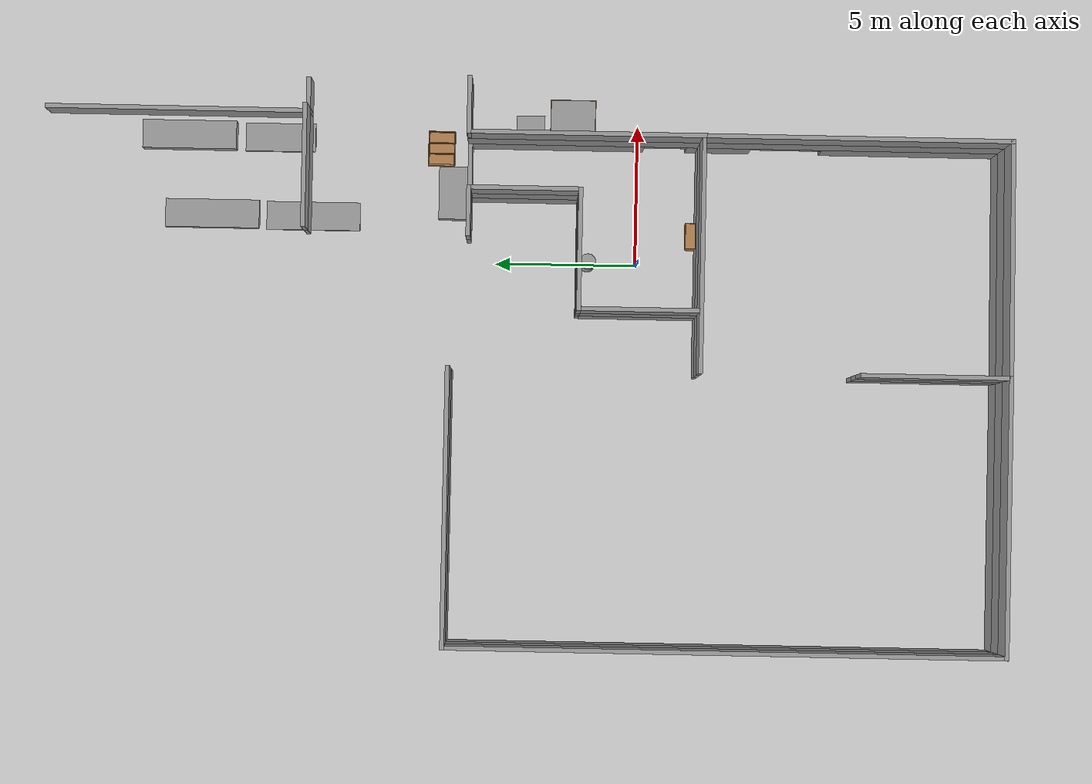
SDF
<sdf version="1.7">
 <world name="default">
  <model name="ground_plane">
   <pose>30 30 0 0 -0 0</pose>
   <static>1</static>
   <link name="link">
    <collision name="collision">
     <geometry><plane><normal>0 0 1</normal><size>100 100</size></plane></geometry>
     <surface><friction><ode><mu>100</mu><mu2>50</mu2></ode></friction></surface>
    </collision>
    <visual name="visual">
     <cast_shadows>0</cast_shadows>
     <geometry><plane><normal>0 0 1</normal><size>100 100</size></plane></geometry>
     <material>
      <script><uri>file://media/materials/scripts/gazebo.material</uri><name>Gazebo/Grey</name></script>
     </material>
    </visual>
   </link>
  </model>
  <model name="Soterrani_AT">
   <pose>30.7763 24.7178 0 0 0 -1.57187</pose>
   <link name="Wall_154">
    <collision name="Wall_154_Collision">
     <geometry><box><size>1.25 0.15 2.5</size></box></geometry>
     <pose>0 0 1.25 0 -0 0</pose>
    </collision>
    <visual name="Wall_154_Visual">
     <pose>0 0 1.25 0 -0 0</pose>
     <geometry><box><size>1.25 0.15 2.5</size></box></geometry>
     <material>
      <script><uri>file://media/materials/scripts/gazebo.material</uri><name>Gazebo/Grey</name></script>
      <ambient>1 1 1 1</ambient>
     </material>
     <meta><layer>1</layer></meta>
    </visual>
    <pose>13.1487 -25.1995 2.5 0 -0 -1.5708</pose>
   </link>
   <link name="Wall_155">
    <collision name="Wall_155_Collision">
     <geometry><box><size>9.25 0.15 2.5</size></box></geometry>
     <pose>0 0 1.25 0 -0 0</pose>
    </collision>
    <visual name="Wall_155_Visual">
     <pose>0 0 1.25 0 -0 0</pose>
     <geometry><box><size>9.25 0.15 2.5</size></box></geometry>
     <material>
      <script><uri>file://media/materials/scripts/gazebo.material</uri><name>Gazebo/Grey</name></script>
      <ambient>1 1 1 1</ambient>
     </material>
     <meta><layer>1</layer></meta>
    </visual>
    <pose>8.59874 -25.7495 2.5 0 -0 3.14159</pose>
   </link>
   <link name="Wall_175">
    <collision name="Wall_175_Collision">
     <geometry><box><size>8.25 0.15 2.5</size></box></geometry>
     <pose>0 0 1.25 0 -0 0</pose>
    </collision>
    <visual name="Wall_175_Visual">
     <pose>0 0 1.25 0 -0 0</pose>
     <geometry><box><size>8.25 0.15 2.5</size></box></geometry>
     <material>
      <script><uri>file://media/materials/scripts/gazebo.material</uri><name>Gazebo/Grey</name></script>
      <ambient>1 1 1 1</ambient>
     </material>
     <meta><layer>1</layer></meta>
    </visual>
    <pose>22.8435 -26.5468 2.5 0 -0 0</pose>
   </link>
   <link name="Wall_176">
    <collision name="Wall_176_Collision">
     <geometry><box><size>8.25 0.15 2.5</size></box></geometry>
     <pose>0 0 1.25 0 -0 0</pose>
    </collision>
    <visual name="Wall_176_Visual">
     <pose>0 0 1.25 0 -0 0</pose>
     <geometry><box><size>8.25 0.15 2.5</size></box></geometry>
     <material>
      <script><uri>file://media/materials/scripts/gazebo.material</uri><name>Gazebo/Grey</name></script>
      <ambient>1 1 1 1</ambient>
     </material>
     <meta><layer>1</layer></meta>
    </visual>
    <pose>26.8935 -30.5968 2.5 0 -0 -1.5708</pose>
   </link>
   <link name="Wall_177">
    <collision name="Wall_177_Collision">
     <geometry><box><size>4 0.15 2.5</size></box></geometry>
     <pose>0 0 1.25 0 -0 0</pose>
    </collision>
    <visual name="Wall_177_Visual">
     <pose>0 0 1.25 0 -0 0</pose>
     <geometry><box><size>4 0.15 2.5</size></box></geometry>
     <material>
      <script><uri>file://media/materials/scripts/gazebo.material</uri><name>Gazebo/Grey</name></script>
      <ambient>1 1 1 1</ambient>
     </material>
     <meta><layer>1</layer></meta>
    </visual>
    <pose>20.749 -28.4624 2.5 0 -0 0</pose>
   </link>
   <link name="Wall_178">
    <collision name="Wall_178_Collision">
     <geometry><box><size>4.25 0.15 2.5</size></box></geometry>
     <pose>0 0 1.25 0 -0 0</pose>
    </collision>
    <visual name="Wall_178_Visual">
     <pose>0 0 1.25 0 -0 0</pose>
     <geometry><box><size>4.25 0.15 2.5</size></box></geometry>
     <material>
      <script><uri>file://media/materials/scripts/gazebo.material</uri><name>Gazebo/Grey</name></script>
      <ambient>1 1 1 1</ambient>
     </material>
     <meta><layer>1</layer></meta>
    </visual>
    <pose>22.674 -30.5124 2.5 0 -0 -1.5708</pose>
   </link>
   <link name="Wall_179">
    <collision name="Wall_179_Collision">
     <geometry><box><size>4.25 0.15 2.5</size></box></geometry>
     <pose>0 0 1.25 0 -0 0</pose>
    </collision>
    <visual name="Wall_179_Visual">
     <pose>0 0 1.25 0 -0 0</pose>
     <geometry><box><size>4.25 0.15 2.5</size></box></geometry>
     <material>
      <script><uri>file://media/materials/scripts/gazebo.material</uri><name>Gazebo/Grey</name></script>
      <ambient>1 1 1 1</ambient>
     </material>
     <meta><layer>1</layer></meta>
    </visual>
    <pose>24.724 -32.5624 2.5 0 -0 0</pose>
   </link>
   <link name="Wall_184">
    <collision name="Wall_184_Collision">
     <geometry><box><size>9.75 0.15 2.5</size></box></geometry>
     <pose>0 0 1.25 0 -0 0</pose>
    </collision>
    <visual name="Wall_184_Visual">
     <pose>0 0 1.25 0 -0 0</pose>
     <geometry><box><size>9.75 0.15 2.5</size></box></geometry>
     <material>
      <script><uri>file://media/materials/scripts/gazebo.material</uri><name>Gazebo/Grey</name></script>
      <ambient>1 1 1 1</ambient>
     </material>
     <meta><layer>1</layer></meta>
    </visual>
    <pose>18.2089 -39.4717 2.5 0 -0 -1.5708</pose>
   </link>
   <link name="Wall_185">
    <collision name="Wall_185_Collision">
     <geometry><box><size>19.5 0.15 2.5</size></box></geometry>
     <pose>0 0 1.25 0 -0 0</pose>
    </collision>
    <visual name="Wall_185_Visual">
     <pose>0 0 1.25 0 -0 0</pose>
     <geometry><box><size>19.5 0.15 2.5</size></box></geometry>
     <material>
      <script><uri>file://media/materials/scripts/gazebo.material</uri><name>Gazebo/Grey</name></script>
      <ambient>1 1 1 1</ambient>
     </material>
     <meta><layer>1</layer></meta>
    </visual>
    <pose>27.8839 -44.2717 2.5 0 -0 0</pose>
   </link>
   <link name="Wall_186">
    <collision name="Wall_186_Collision">
     <geometry><box><size>9.75 0.15 2.5</size></box></geometry>
     <pose>0 0 1.25 0 -0 0</pose>
    </collision>
    <visual name="Wall_186_Visual">
     <pose>0 0 1.25 0 -0 0</pose>
     <geometry><box><size>9.75 0.15 2.5</size></box></geometry>
     <material>
      <script><uri>file://media/materials/scripts/gazebo.material</uri><name>Gazebo/Grey</name></script>
      <ambient>1 1 1 1</ambient>
     </material>
     <meta><layer>1</layer></meta>
    </visual>
    <pose>37.5589 -39.4717 2.5 0 -0 1.5708</pose>
   </link>
   <link name="Wall_187">
    <collision name="Wall_187_Collision">
     <geometry><box><size>5.25 0.15 2.5</size></box></geometry>
     <pose>0 0 1.25 0 -0 0</pose>
    </collision>
    <visual name="Wall_187_Visual">
     <pose>0 0 1.25 0 -0 0</pose>
     <geometry><box><size>5.25 0.15 2.5</size></box></geometry>
     <material>
      <script><uri>file://media/materials/scripts/gazebo.material</uri><name>Gazebo/Grey</name></script>
      <ambient>1 1 1 1</ambient>
     </material>
     <meta><layer>1</layer></meta>
    </visual>
    <pose>35.0089 -34.6717 2.5 0 -0 3.14159</pose>
   </link>
   <link name="Wall_188">
    <collision name="Wall_188_Collision">
     <geometry><box><size>10.75 0.15 2.5</size></box></geometry>
     <pose>0 0 1.25 0 -0 0</pose>
    </collision>
    <visual name="Wall_188_Visual">
     <pose>0 0 1.25 0 -0 0</pose>
     <geometry><box><size>10.75 0.15 2.5</size></box></geometry>
     <material>
      <script><uri>file://media/materials/scripts/gazebo.material</uri><name>Gazebo/Grey</name></script>
      <ambient>1 1 1 1</ambient>
     </material>
     <meta><layer>1</layer></meta>
    </visual>
    <pose>32.1935 -26.5468 2.5 0 -0 0</pose>
   </link>
   <link name="Wall_189">
    <collision name="Wall_189_Collision">
     <geometry><box><size>8.27518 0.15 2.5</size></box></geometry>
     <pose>0 0 1.25 0 -0 0</pose>
    </collision>
    <visual name="Wall_189_Visual">
     <pose>0 0 1.25 0 -0 0</pose>
     <geometry><box><size>8.27518 0.15 2.5</size></box></geometry>
     <material>
      <script><uri>file://media/materials/scripts/gazebo.material</uri><name>Gazebo/Grey</name></script>
      <ambient>1 1 1 1</ambient>
     </material>
     <meta><layer>1</layer></meta>
    </visual>
    <pose>37.5262 -30.6092 2.5 0 -0 -1.56274</pose>
   </link>
   <link name="Wall_206">
    <collision name="Wall_206_Collision">
     <geometry><box><size>4.25 0.15 2.5</size></box></geometry>
     <pose>0 0 1.25 0 -0 0</pose>
    </collision>
    <visual name="Wall_206_Visual">
     <pose>0 0 1.25 0 -0 0</pose>
     <geometry><box><size>4.25 0.15 2.5</size></box></geometry>
     <material>
      <script><uri>file://media/materials/scripts/gazebo.material</uri><name>Gazebo/Grey</name></script>
      <ambient>1 1 1 1</ambient>
     </material>
     <meta><layer>1</layer></meta>
    </visual>
    <pose>13.1487 -27.7995 2.5 0 -0 -1.5708</pose>
   </link>
   <link name="Wall_208">
    <collision name="Wall_208_Collision">
     <geometry><box><size>2 0.15 2.5</size></box></geometry>
     <pose>0 0 1.25 0 -0 0</pose>
    </collision>
    <visual name="Wall_208_Visual">
     <pose>0 0 1.25 0 -0 0</pose>
     <geometry><box><size>2 0.15 2.5</size></box></geometry>
     <material>
      <script><uri>file://media/materials/scripts/gazebo.material</uri><name>Gazebo/Grey</name></script>
      <ambient>1 1 1 1</ambient>
     </material>
     <meta><layer>1</layer></meta>
    </visual>
    <pose>18.7935 -25.6218 2.5 0 -0 1.5708</pose>
   </link>
   <link name="Wall_218">
    <collision name="Wall_218_Collision">
     <geometry><box><size>1.75 0.15 2.5</size></box></geometry>
     <pose>0 0 1.25 0 -0 0</pose>
    </collision>
    <visual name="Wall_218_Visual">
     <pose>0 0 1.25 0 -0 0</pose>
     <geometry><box><size>1.75 0.15 2.5</size></box></geometry>
     <material>
      <script><uri>file://media/materials/scripts/gazebo.material</uri><name>Gazebo/Grey</name></script>
      <ambient>1 1 1 1</ambient>
     </material>
     <meta><layer>1</layer></meta>
    </visual>
    <pose>18.824 -29.2624 2.5 0 -0 -1.5708</pose>
   </link>
   <link name="Wall_245">
    <collision name="Wall_245_Collision">
     <geometry><box><size>8.25 0.15 2.5</size></box></geometry>
     <pose>0 0 1.25 0 -0 0</pose>
    </collision>
    <visual name="Wall_245_Visual">
     <pose>0 0 1.25 0 -0 0</pose>
     <geometry><box><size>8.25 0.15 2.5</size></box></geometry>
     <material>
      <script><uri>file://media/materials/scripts/gazebo.material</uri><name>Gazebo/Grey</name></script>
      <ambient>1 1 1 1</ambient>
     </material>
     <meta><layer>2</layer></meta>
    </visual>
    <pose>22.8435 -26.5468 5 0 -0 0</pose>
   </link>
   <link name="Wall_246">
    <collision name="Wall_246_Collision">
     <geometry><box><size>8.25 0.15 2.5</size></box></geometry>
     <pose>0 0 1.25 0 -0 0</pose>
    </collision>
    <visual name="Wall_246_Visual">
     <pose>0 0 1.25 0 -0 0</pose>
     <geometry><box><size>8.25 0.15 2.5</size></box></geometry>
     <material>
      <script><uri>file://media/materials/scripts/gazebo.material</uri><name>Gazebo/Grey</name></script>
      <ambient>1 1 1 1</ambient>
     </material>
     <meta><layer>2</layer></meta>
    </visual>
    <pose>26.8935 -30.5968 5 0 -0 -1.5708</pose>
   </link>
   <link name="Wall_247">
    <collision name="Wall_247_Collision">
     <geometry><box><size>4 0.15 2.5</size></box></geometry>
     <pose>0 0 1.25 0 -0 0</pose>
    </collision>
    <visual name="Wall_247_Visual">
     <pose>0 0 1.25 0 -0 0</pose>
     <geometry><box><size>4 0.15 2.5</size></box></geometry>
     <material>
      <script><uri>file://media/materials/scripts/gazebo.material</uri><name>Gazebo/Grey</name></script>
      <ambient>1 1 1 1</ambient>
     </material>
     <meta><layer>2</layer></meta>
    </visual>
    <pose>20.749 -28.4624 5 0 -0 0</pose>
   </link>
   <link name="Wall_248">
    <collision name="Wall_248_Collision">
     <geometry><box><size>4.25 0.15 2.5</size></box></geometry>
     <pose>0 0 1.25 0 -0 0</pose>
    </collision>
    <visual name="Wall_248_Visual">
     <pose>0 0 1.25 0 -0 0</pose>
     <geometry><box><size>4.25 0.15 2.5</size></box></geometry>
     <material>
      <script><uri>file://media/materials/scripts/gazebo.material</uri><name>Gazebo/Grey</name></script>
      <ambient>1 1 1 1</ambient>
     </material>
     <meta><layer>2</layer></meta>
    </visual>
    <pose>22.674 -30.5124 5 0 -0 -1.5708</pose>
   </link>
   <link name="Wall_249">
    <collision name="Wall_249_Collision">
     <geometry><box><size>4.25 0.15 2.5</size></box></geometry>
     <pose>0 0 1.25 0 -0 0</pose>
    </collision>
    <visual name="Wall_249_Visual">
     <pose>0 0 1.25 0 -0 0</pose>
     <geometry><box><size>4.25 0.15 2.5</size></box></geometry>
     <material>
      <script><uri>file://media/materials/scripts/gazebo.material</uri><name>Gazebo/Grey</name></script>
      <ambient>1 1 1 1</ambient>
     </material>
     <meta><layer>2</layer></meta>
    </visual>
    <pose>24.724 -32.5624 5 0 -0 0</pose>
   </link>
   <link name="Wall_254">
    <collision name="Wall_254_Collision">
     <geometry><box><size>9.75 0.15 2.5</size></box></geometry>
     <pose>0 0 1.25 0 -0 0</pose>
    </collision>
    <visual name="Wall_254_Visual">
     <pose>0 0 1.25 0 -0 0</pose>
     <geometry><box><size>9.75 0.15 2.5</size></box></geometry>
     <material>
      <script><uri>file://media/materials/scripts/gazebo.material</uri><name>Gazebo/Grey</name></script>
      <ambient>1 1 1 1</ambient>
     </material>
     <meta><layer>2</layer></meta>
    </visual>
    <pose>18.2089 -39.4717 5 0 -0 -1.5708</pose>
   </link>
   <link name="Wall_255">
    <collision name="Wall_255_Collision">
     <geometry><box><size>19.5 0.15 2.5</size></box></geometry>
     <pose>0 0 1.25 0 -0 0</pose>
    </collision>
    <visual name="Wall_255_Visual">
     <pose>0 0 1.25 0 -0 0</pose>
     <geometry><box><size>19.5 0.15 2.5</size></box></geometry>
     <material>
      <script><uri>file://media/materials/scripts/gazebo.material</uri><name>Gazebo/Grey</name></script>
      <ambient>1 1 1 1</ambient>
     </material>
     <meta><layer>2</layer></meta>
    </visual>
    <pose>27.8839 -44.2717 5 0 -0 0</pose>
   </link>
   <link name="Wall_256">
    <collision name="Wall_256_Collision">
     <geometry><box><size>9.75 0.15 2.5</size></box></geometry>
     <pose>0 0 1.25 0 -0 0</pose>
    </collision>
    <visual name="Wall_256_Visual">
     <pose>0 0 1.25 0 -0 0</pose>
     <geometry><box><size>9.75 0.15 2.5</size></box></geometry>
     <material>
      <script><uri>file://media/materials/scripts/gazebo.material</uri><name>Gazebo/Grey</name></script>
      <ambient>1 1 1 1</ambient>
     </material>
     <meta><layer>2</layer></meta>
    </visual>
    <pose>37.5589 -39.4717 5 0 -0 1.5708</pose>
   </link>
   <link name="Wall_257">
    <collision name="Wall_257_Collision">
     <geometry><box><size>5.25 0.15 2.5</size></box></geometry>
     <pose>0 0 1.25 0 -0 0</pose>
    </collision>
    <visual name="Wall_257_Visual">
     <pose>0 0 1.25 0 -0 0</pose>
     <geometry><box><size>5.25 0.15 2.5</size></box></geometry>
     <material>
      <script><uri>file://media/materials/scripts/gazebo.material</uri><name>Gazebo/Grey</name></script>
      <ambient>1 1 1 1</ambient>
     </material>
     <meta><layer>2</layer></meta>
    </visual>
    <pose>35.0089 -34.6717 5 0 -0 3.14159</pose>
   </link>
   <link name="Wall_258">
    <collision name="Wall_258_Collision">
     <geometry><box><size>10.75 0.15 2.5</size></box></geometry>
     <pose>0 0 1.25 0 -0 0</pose>
    </collision>
    <visual name="Wall_258_Visual">
     <pose>0 0 1.25 0 -0 0</pose>
     <geometry><box><size>10.75 0.15 2.5</size></box></geometry>
     <material>
      <script><uri>file://media/materials/scripts/gazebo.material</uri><name>Gazebo/Grey</name></script>
      <ambient>1 1 1 1</ambient>
     </material>
     <meta><layer>2</layer></meta>
    </visual>
    <pose>32.1935 -26.5468 5 0 -0 0</pose>
   </link>
   <link name="Wall_259">
    <collision name="Wall_259_Collision">
     <geometry><box><size>8.27518 0.15 2.5</size></box></geometry>
     <pose>0 0 1.25 0 -0 0</pose>
    </collision>
    <visual name="Wall_259_Visual">
     <pose>0 0 1.25 0 -0 0</pose>
     <geometry><box><size>8.27518 0.15 2.5</size></box></geometry>
     <material>
      <script><uri>file://media/materials/scripts/gazebo.material</uri><name>Gazebo/Grey</name></script>
      <ambient>1 1 1 1</ambient>
     </material>
     <meta><layer>2</layer></meta>
    </visual>
    <pose>37.5262 -30.6092 5 0 -0 -1.56274</pose>
   </link>
   <link name="Wall_276">
    <collision name="Wall_276_Collision">
     <geometry><box><size>4.25 0.15 2.5</size></box></geometry>
     <pose>0 0 1.25 0 -0 0</pose>
    </collision>
    <visual name="Wall_276_Visual">
     <pose>0 0 1.25 0 -0 0</pose>
     <geometry><box><size>4.25 0.15 2.5</size></box></geometry>
     <material>
      <script><uri>file://media/materials/scripts/gazebo.material</uri><name>Gazebo/Grey</name></script>
      <ambient>1 1 1 1</ambient>
     </material>
     <meta><layer>2</layer></meta>
    </visual>
    <pose>13.1487 -27.7995 5 0 -0 -1.5708</pose>
   </link>
   <link name="Wall_277">
    <collision name="Wall_277_Collision">
     <geometry><box><size>2 0.15 2.5</size></box></geometry>
     <pose>0 0 1.25 0 -0 0</pose>
    </collision>
    <visual name="Wall_277_Visual">
     <pose>0 0 1.25 0 -0 0</pose>
     <geometry><box><size>2 0.15 2.5</size></box></geometry>
     <material>
      <script><uri>file://media/materials/scripts/gazebo.material</uri><name>Gazebo/Grey</name></script>
      <ambient>1 1 1 1</ambient>
     </material>
     <meta><layer>2</layer></meta>
    </visual>
    <pose>18.7935 -25.6218 5 0 -0 1.5708</pose>
   </link>
   <link name="Wall_279">
    <collision name="Wall_279_Collision">
     <geometry><box><size>1.75 0.15 2.5</size></box></geometry>
     <pose>0 0 1.25 0 -0 0</pose>
    </collision>
    <visual name="Wall_279_Visual">
     <pose>0 0 1.25 0 -0 0</pose>
     <geometry><box><size>1.75 0.15 2.5</size></box></geometry>
     <material>
      <script><uri>file://media/materials/scripts/gazebo.material</uri><name>Gazebo/Grey</name></script>
      <ambient>1 1 1 1</ambient>
     </material>
     <meta><layer>2</layer></meta>
    </visual>
    <pose>18.824 -29.2624 5 0 -0 -1.5708</pose>
   </link>
   <link name="Wall_36">
    <collision name="Wall_36_Collision">
     <geometry><box><size>3.5 0.15 2.5</size></box></geometry>
     <pose>0 0 1.25 0 -0 0</pose>
    </collision>
    <visual name="Wall_36_Visual">
     <pose>0 0 1.25 0 -0 0</pose>
     <geometry><box><size>3.5 0.15 2.5</size></box></geometry>
     <material>
      <script><uri>file://media/materials/scripts/gazebo.material</uri><name>Gazebo/Grey</name></script>
      <ambient>1 1 1 1</ambient>
     </material>
     <meta><layer>0</layer></meta>
    </visual>
    <pose>18.7935 -28.2218 0 0 -0 1.5708</pose>
   </link>
   <link name="Wall_41">
    <pose>22.8435 -26.5468 0 0 -0 0</pose>
    <visual name="Wall_41_Visual_0">
     <pose>-1.01658 0 1.25 0 -0 0</pose>
     <geometry><box><size>6.21685 0.15 2.5</size></box></geometry>
     <material>
      <script><uri>file://media/materials/scripts/gazebo.material</uri><name>Gazebo/Grey</name></script>
      <ambient>1 1 1 1</ambient>
     </material>
     <meta><layer>0</layer></meta>
    </visual>
    <collision name="Wall_41_Collision_0">
     <geometry><box><size>6.21685 0.15 2.5</size></box></geometry>
     <pose>-1.01658 0 1.25 0 -0 0</pose>
    </collision>
    <visual name="Wall_41_Visual_1">
     <pose>3.85842 0 1.25 0 -0 0</pose>
     <geometry><box><size>0.533155 0.15 2.5</size></box></geometry>
     <material>
      <script><uri>file://media/materials/scripts/gazebo.material</uri><name>Gazebo/Grey</name></script>
      <ambient>1 1 1 1</ambient>
     </material>
     <meta><layer>0</layer></meta>
    </visual>
    <collision name="Wall_41_Collision_1">
     <geometry><box><size>0.533155 0.15 2.5</size></box></geometry>
     <pose>3.85842 0 1.25 0 -0 0</pose>
    </collision>
    <visual name="Wall_41_Visual_2">
     <pose>2.84185 0 2.25 0 -0 0</pose>
     <geometry><box><size>1.5 0.15 0.5</size></box></geometry>
     <material>
      <script><uri>file://media/materials/scripts/gazebo.material</uri><name>Gazebo/Grey</name></script>
      <ambient>1 1 1 1</ambient>
     </material>
     <meta><layer>0</layer></meta>
    </visual>
    <collision name="Wall_41_Collision_2">
     <geometry><box><size>1.5 0.15 0.5</size></box></geometry>
     <pose>2.84185 0 2.25 0 -0 0</pose>
    </collision>
   </link>
   <link name="Wall_43">
    <collision name="Wall_43_Collision">
     <geometry><box><size>8.25 0.15 2.5</size></box></geometry>
     <pose>0 0 1.25 0 -0 0</pose>
    </collision>
    <visual name="Wall_43_Visual">
     <pose>0 0 1.25 0 -0 0</pose>
     <geometry><box><size>8.25 0.15 2.5</size></box></geometry>
     <material>
      <script><uri>file://media/materials/scripts/gazebo.material</uri><name>Gazebo/Grey</name></script>
      <ambient>1 1 1 1</ambient>
     </material>
     <meta><layer>0</layer></meta>
    </visual>
    <pose>26.8935 -30.5968 0 0 -0 -1.5708</pose>
   </link>
   <link name="Wall_45">
    <collision name="Wall_45_Collision">
     <geometry><box><size>4 0.15 2.5</size></box></geometry>
     <pose>0 0 1.25 0 -0 0</pose>
    </collision>
    <visual name="Wall_45_Visual">
     <pose>0 0 1.25 0 -0 0</pose>
     <geometry><box><size>4 0.15 2.5</size></box></geometry>
     <material>
      <script><uri>file://media/materials/scripts/gazebo.material</uri><name>Gazebo/Grey</name></script>
      <ambient>1 1 1 1</ambient>
     </material>
     <meta><layer>0</layer></meta>
    </visual>
    <pose>20.749 -28.4624 0 0 -0 0</pose>
   </link>
   <link name="Wall_46">
    <collision name="Wall_46_Collision">
     <geometry><box><size>4.25 0.15 2.5</size></box></geometry>
     <pose>0 0 1.25 0 -0 0</pose>
    </collision>
    <visual name="Wall_46_Visual">
     <pose>0 0 1.25 0 -0 0</pose>
     <geometry><box><size>4.25 0.15 2.5</size></box></geometry>
     <material>
      <script><uri>file://media/materials/scripts/gazebo.material</uri><name>Gazebo/Grey</name></script>
      <ambient>1 1 1 1</ambient>
     </material>
     <meta><layer>0</layer></meta>
    </visual>
    <pose>22.674 -30.5124 0 0 -0 -1.5708</pose>
   </link>
   <link name="Wall_47">
    <collision name="Wall_47_Collision">
     <geometry><box><size>4.25 0.15 2.5</size></box></geometry>
     <pose>0 0 1.25 0 -0 0</pose>
    </collision>
    <visual name="Wall_47_Visual">
     <pose>0 0 1.25 0 -0 0</pose>
     <geometry><box><size>4.25 0.15 2.5</size></box></geometry>
     <material>
      <script><uri>file://media/materials/scripts/gazebo.material</uri><name>Gazebo/Grey</name></script>
      <ambient>1 1 1 1</ambient>
     </material>
     <meta><layer>0</layer></meta>
    </visual>
    <pose>24.724 -32.5624 0 0 -0 0</pose>
   </link>
   <link name="Wall_58">
    <collision name="Wall_58_Collision">
     <geometry><box><size>9.75 0.15 2.5</size></box></geometry>
     <pose>0 0 1.25 0 -0 0</pose>
    </collision>
    <visual name="Wall_58_Visual">
     <pose>0 0 1.25 0 -0 0</pose>
     <geometry><box><size>9.75 0.15 2.5</size></box></geometry>
     <material>
      <script><uri>file://media/materials/scripts/gazebo.material</uri><name>Gazebo/Grey</name></script>
      <ambient>1 1 1 1</ambient>
     </material>
     <meta><layer>0</layer></meta>
    </visual>
    <pose>18.2089 -39.4717 0 0 -0 -1.5708</pose>
   </link>
   <link name="Wall_59">
    <collision name="Wall_59_Collision">
     <geometry><box><size>19.5 0.15 2.5</size></box></geometry>
     <pose>0 0 1.25 0 -0 0</pose>
    </collision>
    <visual name="Wall_59_Visual">
     <pose>0 0 1.25 0 -0 0</pose>
     <geometry><box><size>19.5 0.15 2.5</size></box></geometry>
     <material>
      <script><uri>file://media/materials/scripts/gazebo.material</uri><name>Gazebo/Grey</name></script>
      <ambient>1 1 1 1</ambient>
     </material>
     <meta><layer>0</layer></meta>
    </visual>
    <pose>27.8839 -44.2717 0 0 -0 0</pose>
   </link>
   <link name="Wall_60">
    <collision name="Wall_60_Collision">
     <geometry><box><size>9.75 0.15 2.5</size></box></geometry>
     <pose>0 0 1.25 0 -0 0</pose>
    </collision>
    <visual name="Wall_60_Visual">
     <pose>0 0 1.25 0 -0 0</pose>
     <geometry><box><size>9.75 0.15 2.5</size></box></geometry>
     <material>
      <script><uri>file://media/materials/scripts/gazebo.material</uri><name>Gazebo/Grey</name></script>
      <ambient>1 1 1 1</ambient>
     </material>
     <meta><layer>0</layer></meta>
    </visual>
    <pose>37.5589 -39.4717 0 0 -0 1.5708</pose>
   </link>
   <link name="Wall_61">
    <collision name="Wall_61_Collision">
     <geometry><box><size>5.25 0.15 2.5</size></box></geometry>
     <pose>0 0 1.25 0 -0 0</pose>
    </collision>
    <visual name="Wall_61_Visual">
     <pose>0 0 1.25 0 -0 0</pose>
     <geometry><box><size>5.25 0.15 2.5</size></box></geometry>
     <material>
      <script><uri>file://media/materials/scripts/gazebo.material</uri><name>Gazebo/Grey</name></script>
      <ambient>1 1 1 1</ambient>
     </material>
     <meta><layer>0</layer></meta>
    </visual>
    <pose>35.0089 -34.6717 0 0 -0 3.14159</pose>
   </link>
   <link name="Wall_63">
    <pose>32.1935 -26.5468 0 0 -0 0</pose>
    <visual name="Wall_63_Visual_0">
     <pose>-4.43025 0 1.25 0 -0 0</pose>
     <geometry><box><size>1.8895 0.15 2.5</size></box></geometry>
     <material>
      <script><uri>file://media/materials/scripts/gazebo.material</uri><name>Gazebo/Grey</name></script>
      <ambient>1 1 1 1</ambient>
     </material>
     <meta><layer>0</layer></meta>
    </visual>
    <collision name="Wall_63_Collision_0">
     <geometry><box><size>1.8895 0.15 2.5</size></box></geometry>
     <pose>-4.43025 0 1.25 0 -0 0</pose>
    </collision>
    <visual name="Wall_63_Visual_1">
     <pose>2.20294 0 1.25 0 -0 0</pose>
     <geometry><box><size>6.34413 0.15 2.5</size></box></geometry>
     <material>
      <script><uri>file://media/materials/scripts/gazebo.material</uri><name>Gazebo/Grey</name></script>
      <ambient>1 1 1 1</ambient>
     </material>
     <meta><layer>0</layer></meta>
    </visual>
    <collision name="Wall_63_Collision_1">
     <geometry><box><size>6.34413 0.15 2.5</size></box></geometry>
     <pose>2.20294 0 1.25 0 -0 0</pose>
    </collision>
    <visual name="Wall_63_Visual_2">
     <pose>-2.22731 0 2.25 0 -0 0</pose>
     <geometry><box><size>2.51637 0.15 0.5</size></box></geometry>
     <material>
      <script><uri>file://media/materials/scripts/gazebo.material</uri><name>Gazebo/Grey</name></script>
      <ambient>1 1 1 1</ambient>
     </material>
     <meta><layer>0</layer></meta>
    </visual>
    <collision name="Wall_63_Collision_2">
     <geometry><box><size>2.51637 0.15 0.5</size></box></geometry>
     <pose>-2.22731 0 2.25 0 -0 0</pose>
    </collision>
   </link>
   <link name="Wall_64">
    <collision name="Wall_64_Collision">
     <geometry><box><size>8.27518 0.15 2.5</size></box></geometry>
     <pose>0 0 1.25 0 -0 0</pose>
    </collision>
    <visual name="Wall_64_Visual">
     <pose>0 0 1.25 0 -0 0</pose>
     <geometry><box><size>8.27518 0.15 2.5</size></box></geometry>
     <material>
      <script><uri>file://media/materials/scripts/gazebo.material</uri><name>Gazebo/Grey</name></script>
      <ambient>1 1 1 1</ambient>
     </material>
     <meta><layer>0</layer></meta>
    </visual>
    <pose>37.5262 -30.6092 0 0 -0 -1.56274</pose>
   </link>
   <static>1</static>
  </model>
  <model name="unit_box">
   <pose>1.60005 11.5547 0.153056 0 1e-05 -9.2e-05</pose>
   <link name="link">
    <inertial>
     <mass>1</mass>
     <inertia>
      <ixx>0.166667</ixx>
      <ixy>0</ixy>
      <ixz>0</ixz>
      <iyy>0.166667</iyy>
      <iyz>0</iyz>
      <izz>0.166667</izz>
     </inertia>
    </inertial>
    <collision name="collision"><geometry><box><size>1 3.34246 0.306121</size></box></geometry></collision>
    <visual name="visual">
     <geometry><box><size>1 3.34246 0.306121</size></box></geometry>
     <material>
      <script><name>Gazebo/Grey</name><uri>file://media/materials/scripts/gazebo.material</uri></script>
     </material>
    </visual>
   </link>
  </model>
  <model name="unit_box_clone">
   <pose>1.62306 15.158 0.293158 0 -9e-06 -0.000244</pose>
   <link name="link">
    <inertial>
     <mass>1</mass>
     <inertia>
      <ixx>0.166667</ixx>
      <ixy>0</ixy>
      <ixz>0</ixz>
      <iyy>0.166667</iyy>
      <iyz>0</iyz>
      <izz>0.166667</izz>
     </inertia>
    </inertial>
    <collision name="collision"><geometry><box><size>1 3.34246 0.586326</size></box></geometry></collision>
    <visual name="visual">
     <geometry><box><size>1 3.34246 0.586326</size></box></geometry>
     <material>
      <script><name>Gazebo/Grey</name><uri>file://media/materials/scripts/gazebo.material</uri></script>
     </material>
    </visual>
   </link>
  </model>
  <model name="unit_box_clone_clone">
   <pose>4.40625 15.9975 0.487169 -0.000188 0 0</pose>
   <link name="link">
    <inertial>
     <mass>1</mass>
     <inertia>
      <ixx>0.166667</ixx>
      <ixy>0</ixy>
      <ixz>0</ixz>
      <iyy>0.166667</iyy>
      <iyz>0</iyz>
      <izz>0.166667</izz>
     </inertia>
    </inertial>
    <collision name="collision"><geometry><box><size>1 3.34246 0.974966</size></box></geometry></collision>
    <visual name="visual">
     <geometry><box><size>1 3.34246 0.974966</size></box></geometry>
     <material>
      <script><name>Gazebo/Grey</name><uri>file://media/materials/scripts/gazebo.material</uri></script>
     </material>
    </visual>
   </link>
  </model>
  <model name="unit_box_clone_0">
   <pose>4.39597 12.7728 0.153056 0 1e-05 -0.000225</pose>
   <link name="link">
    <inertial>
     <mass>1</mass>
     <inertia>
      <ixx>0.166667</ixx>
      <ixy>0</ixy>
      <ixz>0</ixz>
      <iyy>0.166667</iyy>
      <iyz>0</iyz>
      <izz>0.166667</izz>
     </inertia>
    </inertial>
    <collision name="collision"><geometry><box><size>1 2.49805 0.306121</size></box></geometry></collision>
    <visual name="visual">
     <geometry><box><size>1 2.49805 0.306121</size></box></geometry>
     <material>
      <script><name>Gazebo/Grey</name><uri>file://media/materials/scripts/gazebo.material</uri></script>
     </material>
    </visual>
   </link>
  </model>
  <model name="unit_box_2">
   <pose>4.78367 3.83237 0.434807 0 -0 0</pose>
   <link name="link">
    <inertial>
     <mass>1</mass>
     <inertia>
      <ixx>0.166667</ixx>
      <ixy>0</ixy>
      <ixz>0</ixz>
      <iyy>0.166667</iyy>
      <iyz>0</iyz>
      <izz>0.166667</izz>
     </inertia>
    </inertial>
    <collision name="collision"><geometry><box><size>1 1 0.869614</size></box></geometry></collision>
    <visual name="visual">
     <geometry><box><size>1 1 0.869614</size></box></geometry>
     <material>
      <script><name>Gazebo/Grey</name><uri>file://media/materials/scripts/gazebo.material</uri></script>
     </material>
    </visual>
   </link>
  </model>
  <model name="table_0">
   <static>1</static>
   <link name="link">
    <collision name="surface">
     <pose>0 0 1 0 -0 0</pose>
     <geometry><box><size>1.5 0.8 0.03</size></box></geometry>
     <surface><friction><ode><mu>0.6</mu><mu2>0.6</mu2></ode></friction></surface>
    </collision>
    <visual name="visual1">
     <pose>0 0 1 0 -0 0</pose>
     <geometry><box><size>1.5 0.8 0.03</size></box></geometry>
     <material>
      <script><uri>file://media/materials/scripts/gazebo.material</uri><name>Gazebo/Wood</name></script>
     </material>
    </visual>
    <collision name="front_left_leg">
     <pose>0.68 0.38 0.5 0 -0 0</pose>
     <geometry><cylinder><radius>0.02</radius><length>1</length></cylinder></geometry>
    </collision>
    <visual name="front_left_leg">
     <pose>0.68 0.38 0.5 0 -0 0</pose>
     <geometry><cylinder><radius>0.02</radius><length>1</length></cylinder></geometry>
     <material>
      <script><uri>file://media/materials/scripts/gazebo.material</uri><name>Gazebo/Grey</name></script>
     </material>
    </visual>
    <collision name="front_right_leg">
     <pose>0.68 -0.38 0.5 0 -0 0</pose>
     <geometry><cylinder><radius>0.02</radius><length>1</length></cylinder></geometry>
    </collision>
    <visual name="front_right_leg">
     <pose>0.68 -0.38 0.5 0 -0 0</pose>
     <geometry><cylinder><radius>0.02</radius><length>1</length></cylinder></geometry>
     <material>
      <script><uri>file://media/materials/scripts/gazebo.material</uri><name>Gazebo/Grey</name></script>
     </material>
    </visual>
    <collision name="back_right_leg">
     <pose>-0.68 -0.38 0.5 0 -0 0</pose>
     <geometry><cylinder><radius>0.02</radius><length>1</length></cylinder></geometry>
    </collision>
    <visual name="back_right_leg">
     <pose>-0.68 -0.38 0.5 0 -0 0</pose>
     <geometry><cylinder><radius>0.02</radius><length>1</length></cylinder></geometry>
     <material>
      <script><uri>file://media/materials/scripts/gazebo.material</uri><name>Gazebo/Grey</name></script>
     </material>
    </visual>
    <collision name="back_left_leg">
     <pose>-0.68 0.38 0.5 0 -0 0</pose>
     <geometry><cylinder><radius>0.02</radius><length>1</length></cylinder></geometry>
    </collision>
    <visual name="back_left_leg">
     <pose>-0.68 0.38 0.5 0 -0 0</pose>
     <geometry><cylinder><radius>0.02</radius><length>1</length></cylinder></geometry>
     <material>
      <script><uri>file://media/materials/scripts/gazebo.material</uri><name>Gazebo/Grey</name></script>
     </material>
    </visual>
   </link>
   <pose>5.10848 1.9224 0 0 -0 0</pose>
  </model>
  <model name="table_1">
   <static>1</static>
   <link name="link">
    <collision name="surface">
     <pose>0 0 1 0 -0 0</pose>
     <geometry><box><size>1.5 0.8 0.03</size></box></geometry>
     <surface><friction><ode><mu>0.6</mu><mu2>0.6</mu2></ode></friction></surface>
    </collision>
    <visual name="visual1">
     <pose>0 0 1 0 -0 0</pose>
     <geometry><box><size>1.5 0.8 0.03</size></box></geometry>
     <material>
      <script><uri>file://media/materials/scripts/gazebo.material</uri><name>Gazebo/Wood</name></script>
     </material>
    </visual>
    <collision name="front_left_leg">
     <pose>0.68 0.38 0.5 0 -0 0</pose>
     <geometry><cylinder><radius>0.02</radius><length>1</length></cylinder></geometry>
    </collision>
    <visual name="front_left_leg">
     <pose>0.68 0.38 0.5 0 -0 0</pose>
     <geometry><cylinder><radius>0.02</radius><length>1</length></cylinder></geometry>
     <material>
      <script><uri>file://media/materials/scripts/gazebo.material</uri><name>Gazebo/Grey</name></script>
     </material>
    </visual>
    <collision name="front_right_leg">
     <pose>0.68 -0.38 0.5 0 -0 0</pose>
     <geometry><cylinder><radius>0.02</radius><length>1</length></cylinder></geometry>
    </collision>
    <visual name="front_right_leg">
     <pose>0.68 -0.38 0.5 0 -0 0</pose>
     <geometry><cylinder><radius>0.02</radius><length>1</length></cylinder></geometry>
     <material>
      <script><uri>file://media/materials/scripts/gazebo.material</uri><name>Gazebo/Grey</name></script>
     </material>
    </visual>
    <collision name="back_right_leg">
     <pose>-0.68 -0.38 0.5 0 -0 0</pose>
     <geometry><cylinder><radius>0.02</radius><length>1</length></cylinder></geometry>
    </collision>
    <visual name="back_right_leg">
     <pose>-0.68 -0.38 0.5 0 -0 0</pose>
     <geometry><cylinder><radius>0.02</radius><length>1</length></cylinder></geometry>
     <material>
      <script><uri>file://media/materials/scripts/gazebo.material</uri><name>Gazebo/Grey</name></script>
     </material>
    </visual>
    <collision name="back_left_leg">
     <pose>-0.68 0.38 0.5 0 -0 0</pose>
     <geometry><cylinder><radius>0.02</radius><length>1</length></cylinder></geometry>
    </collision>
    <visual name="back_left_leg">
     <pose>-0.68 0.38 0.5 0 -0 0</pose>
     <geometry><cylinder><radius>0.02</radius><length>1</length></cylinder></geometry>
     <material>
      <script><uri>file://media/materials/scripts/gazebo.material</uri><name>Gazebo/Grey</name></script>
     </material>
    </visual>
   </link>
   <pose>5.11017 2.73231 0 0 -0 0</pose>
  </model>
  <model name="unit_cylinder_clone_0">
   <pose>0.051985 1.72913 1.24377 0 0 -0.001204</pose>
   <link name="link">
    <inertial>
     <mass>1</mass>
     <inertia><ixx>0.145833</ixx><ixy>0</ixy><ixz>0</ixz><iyy>0.145833</iyy><iyz>0</iyz><izz>0.125</izz></inertia>
    </inertial>
    <collision name="collision">
     <geometry><cylinder><radius>0.272712</radius><length>2.48755</length></cylinder></geometry>
    </collision>
    <visual name="visual">
     <geometry><cylinder><radius>0.272712</radius><length>2.48755</length></cylinder></geometry>
     <material>
      <script><name>Gazebo/Grey</name><uri>file://media/materials/scripts/gazebo.material</uri></script>
     </material>
    </visual>
   </link>
  </model>
  <model name="bookshelf_0">
   <static>1</static>
   <link name="link">
    <inertial><mass>1</mass></inertial>
    <collision name="back">
     <pose>0 0.005 0.6 0 -0 0</pose>
     <geometry><box><size>0.9 0.01 1.2</size></box></geometry>
    </collision>
    <visual name="visual1">
     <pose>0 0.005 0.6 0 -0 0</pose>
     <geometry><box><size>0.9 0.01 1.2</size></box></geometry>
     <material>
      <script><uri>file://media/materials/scripts/gazebo.material</uri><name>Gazebo/Wood</name></script>
     </material>
    </visual>
    <collision name="left_side">
     <pose>0.45 -0.195 0.6 0 -0 0</pose>
     <geometry><box><size>0.02 0.4 1.2</size></box></geometry>
    </collision>
    <visual name="visual2">
     <pose>0.45 -0.195 0.6 0 -0 0</pose>
     <geometry><box><size>0.02 0.4 1.2</size></box></geometry>
     <material>
      <script><uri>file://media/materials/scripts/gazebo.material</uri><name>Gazebo/Wood</name></script>
     </material>
    </visual>
    <collision name="right_side">
     <pose>-0.45 -0.195 0.6 0 -0 0</pose>
     <geometry><box><size>0.02 0.4 1.2</size></box></geometry>
    </collision>
    <visual name="visual3">
     <pose>-0.45 -0.195 0.6 0 -0 0</pose>
     <geometry><box><size>0.02 0.4 1.2</size></box></geometry>
     <material>
      <script><uri>file://media/materials/scripts/gazebo.material</uri><name>Gazebo/Wood</name></script>
     </material>
    </visual>
    <collision name="bottom">
     <pose>0 -0.195 0.03 0 -0 0</pose>
     <geometry><box><size>0.88 0.4 0.06</size></box></geometry>
    </collision>
    <visual name="visual4">
     <pose>0 -0.195 0.03 0 -0 0</pose>
     <geometry><box><size>0.88 0.4 0.06</size></box></geometry>
     <material>
      <script><uri>file://media/materials/scripts/gazebo.material</uri><name>Gazebo/Wood</name></script>
     </material>
    </visual>
    <collision name="top">
     <pose>0 -0.195 1.19 0 -0 0</pose>
     <geometry><box><size>0.88 0.4 0.02</size></box></geometry>
    </collision>
    <visual name="visual5">
     <pose>0 -0.195 1.19 0 -0 0</pose>
     <geometry><box><size>0.88 0.4 0.02</size></box></geometry>
     <material>
      <script><uri>file://media/materials/scripts/gazebo.material</uri><name>Gazebo/Wood</name></script>
     </material>
    </visual>
    <collision name="low_shelf">
     <pose>0 -0.195 0.43 0 -0 0</pose>
     <geometry><box><size>0.88 0.4 0.02</size></box></geometry>
    </collision>
    <visual name="visual6">
     <pose>0 -0.195 0.43 0 -0 0</pose>
     <geometry><box><size>0.88 0.4 0.02</size></box></geometry>
     <material>
      <script><uri>file://media/materials/scripts/gazebo.material</uri><name>Gazebo/Wood</name></script>
     </material>
    </visual>
    <collision name="high_shelf">
     <pose>0 -0.195 0.8 0 -0 0</pose>
     <geometry><box><size>0.88 0.4 0.02</size></box></geometry>
    </collision>
    <visual name="visual7">
     <pose>0 -0.195 0.8 0 -0 0</pose>
     <geometry><box><size>0.88 0.4 0.02</size></box></geometry>
     <material>
      <script><uri>file://media/materials/scripts/gazebo.material</uri><name>Gazebo/Wood</name></script>
     </material>
    </visual>
   </link>
   <pose>1.05501 -1.72932 0.488103 0 -0 0</pose>
  </model>
  <model name="bookshelf_1">
   <static>1</static>
   <link name="link">
    <inertial><mass>1</mass></inertial>
    <collision name="back">
     <pose>0 0.005 0.6 0 -0 0</pose>
     <geometry><box><size>0.9 0.01 1.2</size></box></geometry>
    </collision>
    <visual name="visual1">
     <pose>0 0.005 0.6 0 -0 0</pose>
     <geometry><box><size>0.9 0.01 1.2</size></box></geometry>
     <material>
      <script><uri>file://media/materials/scripts/gazebo.material</uri><name>Gazebo/Wood</name></script>
     </material>
    </visual>
    <collision name="left_side">
     <pose>0.45 -0.195 0.6 0 -0 0</pose>
     <geometry><box><size>0.02 0.4 1.2</size></box></geometry>
    </collision>
    <visual name="visual2">
     <pose>0.45 -0.195 0.6 0 -0 0</pose>
     <geometry><box><size>0.02 0.4 1.2</size></box></geometry>
     <material>
      <script><uri>file://media/materials/scripts/gazebo.material</uri><name>Gazebo/Wood</name></script>
     </material>
    </visual>
    <collision name="right_side">
     <pose>-0.45 -0.195 0.6 0 -0 0</pose>
     <geometry><box><size>0.02 0.4 1.2</size></box></geometry>
    </collision>
    <visual name="visual3">
     <pose>-0.45 -0.195 0.6 0 -0 0</pose>
     <geometry><box><size>0.02 0.4 1.2</size></box></geometry>
     <material>
      <script><uri>file://media/materials/scripts/gazebo.material</uri><name>Gazebo/Wood</name></script>
     </material>
    </visual>
    <collision name="bottom">
     <pose>0 -0.195 0.03 0 -0 0</pose>
     <geometry><box><size>0.88 0.4 0.06</size></box></geometry>
    </collision>
    <visual name="visual4">
     <pose>0 -0.195 0.03 0 -0 0</pose>
     <geometry><box><size>0.88 0.4 0.06</size></box></geometry>
     <material>
      <script><uri>file://media/materials/scripts/gazebo.material</uri><name>Gazebo/Wood</name></script>
     </material>
    </visual>
    <collision name="top">
     <pose>0 -0.195 1.19 0 -0 0</pose>
     <geometry><box><size>0.88 0.4 0.02</size></box></geometry>
    </collision>
    <visual name="visual5">
     <pose>0 -0.195 1.19 0 -0 0</pose>
     <geometry><box><size>0.88 0.4 0.02</size></box></geometry>
     <material>
      <script><uri>file://media/materials/scripts/gazebo.material</uri><name>Gazebo/Wood</name></script>
     </material>
    </visual>
    <collision name="low_shelf">
     <pose>0 -0.195 0.43 0 -0 0</pose>
     <geometry><box><size>0.88 0.4 0.02</size></box></geometry>
    </collision>
    <visual name="visual6">
     <pose>0 -0.195 0.43 0 -0 0</pose>
     <geometry><box><size>0.88 0.4 0.02</size></box></geometry>
     <material>
      <script><uri>file://media/materials/scripts/gazebo.material</uri><name>Gazebo/Wood</name></script>
     </material>
    </visual>
    <collision name="high_shelf">
     <pose>0 -0.195 0.8 0 -0 0</pose>
     <geometry><box><size>0.88 0.4 0.02</size></box></geometry>
    </collision>
    <visual name="visual7">
     <pose>0 -0.195 0.8 0 -0 0</pose>
     <geometry><box><size>0.88 0.4 0.02</size></box></geometry>
     <material>
      <script><uri>file://media/materials/scripts/gazebo.material</uri><name>Gazebo/Wood</name></script>
     </material>
    </visual>
   </link>
   <pose>3.1616 6.91627 4.68154 -1.57025 -0.034345 -1.58662</pose>
  </model>
  <model name="unit_box_9">
   <pose>2.47504 6.56402 0.499995 -5e-06 3e-06 4e-06</pose>
   <link name="link">
    <inertial>
     <mass>1</mass>
     <inertia>
      <ixx>0.166667</ixx>
      <ixy>0</ixy>
      <ixz>0</ixz>
      <iyy>0.166667</iyy>
      <iyz>0</iyz>
      <izz>0.166667</izz>
     </inertia>
    </inertial>
    <collision name="collision"><geometry><box><size>1.86127 1 1</size></box></geometry></collision>
    <visual name="visual">
     <geometry><box><size>1.86127 1 1</size></box></geometry>
     <material>
      <script><name>Gazebo/Grey</name><uri>file://media/materials/scripts/gazebo.material</uri></script>
     </material>
    </visual>
   </link>
  </model>
  <model name="unit_box_1">
   <pose>5.12187 2.33414 1.24522 -0 -1e-05 -1e-06</pose>
   <link name="link">
    <inertial>
     <mass>1</mass>
     <inertia>
      <ixx>0.166667</ixx>
      <ixy>0</ixy>
      <ixz>0</ixz>
      <iyy>0.166667</iyy>
      <iyz>0</iyz>
      <izz>0.166667</izz>
     </inertia>
    </inertial>
    <collision name="collision"><geometry><box><size>1.37174 1.56959 0.460462</size></box></geometry></collision>
    <visual name="visual">
     <geometry><box><size>1.37174 1.56959 0.460462</size></box></geometry>
     <material>
      <script><name>Gazebo/Grey</name><uri>file://media/materials/scripts/gazebo.material</uri></script>
     </material>
    </visual>
   </link>
  </model>
 </world>
</sdf>
